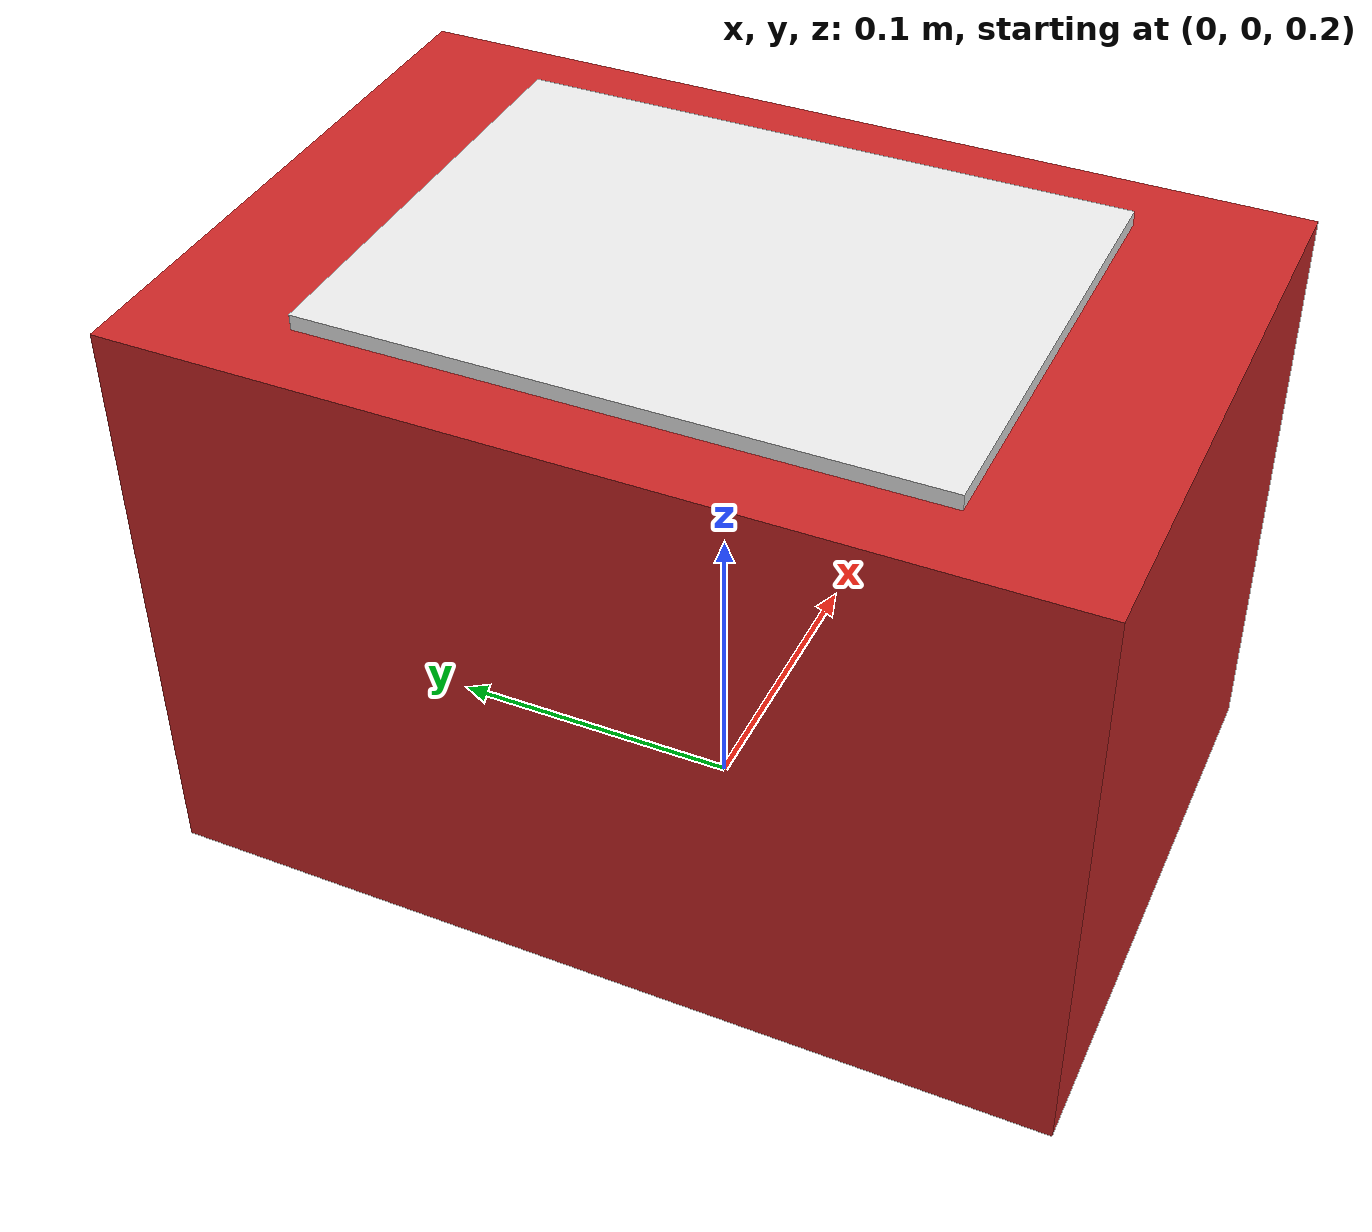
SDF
<?xml version="1.0" ?>
<sdf version="1.5">
  <model name="mbzirc_box_red">
    <pose>0 0 0.3 0 0 0</pose>
    <link name="link">
      <collision name="collision">
        <geometry>
          <box>
            <size>0.2 0.3 0.2</size>
          </box>
        </geometry>
      </collision>
      <visual name="visual">
        <geometry>
          <box>
            <size>0.2 0.3 0.2</size>
          </box>
        </geometry>
        <material>
          <script>
            <name>Gazebo/Red</name>
            <uri>file://media/materials/scripts/gazebo.material</uri>
          </script>
        </material>
      </visual>
      <collision name="collision_top">
        <pose>0 0 0.1 0 0 0</pose>
        <geometry>
          <box>
            <size>0.15 0.2 0.01</size>
          </box>
        </geometry>
      </collision>
      <visual name="visual_top">
        <pose>0 0 0.1 0 0 0</pose>
        <geometry>
          <box>
            <size>0.15 0.2 0.01</size>
          </box>
        </geometry>
        <material>
          <script>
            <name>Gazebo/White</name>
            <uri>file://media/materials/scripts/gazebo.material</uri>
          </script>
        </material>
      </visual>
    </link>
  </model>
</sdf>
